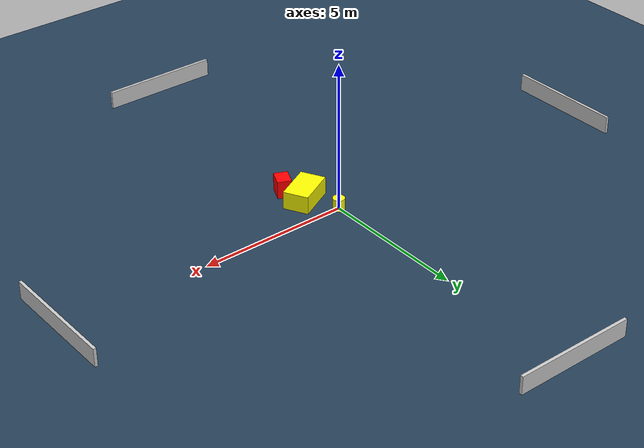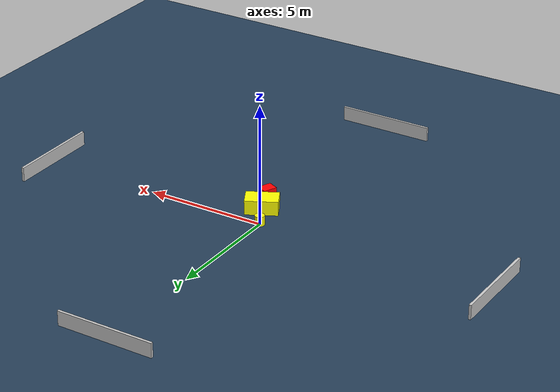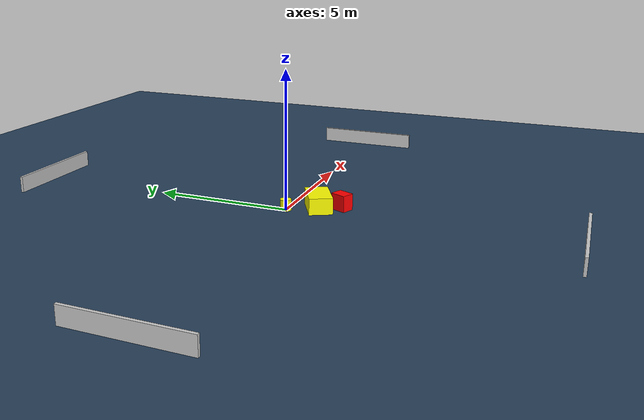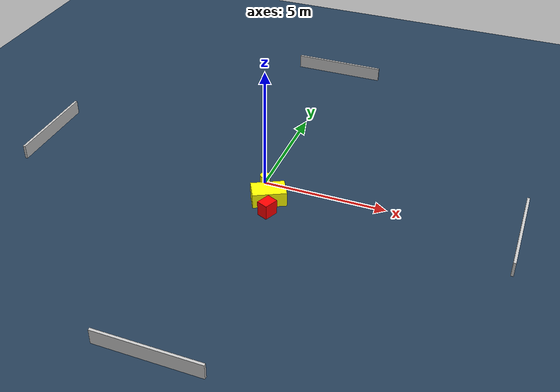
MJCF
<?xml version="1.0" ?>
<mujoco model="generated_environment">
  <option timestep="0.01" integrator="RK4" cone="elliptic"/>
  <default>
    <geom density="1"/>
  </default>
  <asset>
    <texture builtin="gradient" height="3072" name="skybox" rgb1="0.3 0.5 0.7" rgb2="0 0 0" type="skybox" width="512"/>
    <texture builtin="checker" height="300" name="groundplane" rgb1="0.2 0.3 0.4" rgb2="0.1 0.2 0.3" type="2d" width="300"/>
    <material name="groundplane" reflectance="0.2" texrepeat="5 5" texture="groundplane"/>
  </asset>
  <worldbody>
    <light dir="0 0 -1" directional="true" pos="0 0 1.5"/>
    <geom condim="3" friction="0.5 0.005 0.001" material="groundplane" name="floor" pos="0 0 0" size="0 0 0.05" type="plane"/>
    <body name="walls">
      <geom name="wall_1" condim="4" pos="-10.0 0.0 0.3" rgba="0.800000011920929 0.800000011920929 0.800000011920929 1.0" size="0.05 2.0 0.3" type="box"/>
      <geom name="wall_2" condim="4" pos="10.0 0.0 0.3" rgba="0.800000011920929 0.800000011920929 0.800000011920929 1.0" size="0.05 2.0 0.3" type="box"/>
      <geom name="wall_3" condim="4" pos="0.0 -10.0 0.3" rgba="0.800000011920929 0.800000011920929 0.800000011920929 1.0" size="2.0 0.05 0.3" type="box"/>
      <geom name="wall_4" condim="4" pos="0.0 10.0 0.3" rgba="0.800000011920929 0.800000011920929 0.800000011920929 1.0" size="2.0 0.05 0.3" type="box"/>
    </body>
    <body name="robot">
      <joint name="joint_x" type="slide" pos="0 0 0" axis="1 0 0"/>
      <joint name="joint_y" type="slide" pos="0 0 0" axis="0 1 0"/>
      <geom name="robot" type="cylinder" pos="0.0 0.0 0.2" size="0.2 0.2 0.0" mass="5.0" friction="1.0 0.005 0.0001" condim="4" rgba="1.0 1.0 0.0 1.0"/>
    </body>
    <body name="obstacle_1_movable">
      <geom name="obstacle_1_movable" condim="4" pos="0.546191107049259 -1.0296637578349601 0.3" euler="0 0 117.6121221729721" friction="0.0 0.005 0.001" rgba="1.0 1.0 0.0 1.0" size="0.4218842346656654 0.6702329671018212 0.3" type="box" mass="0.1"/>
      <joint type="free"/>
    </body>
    <body name="obstacle_2_static">
      <geom name="obstacle_2_static" condim="4" pos="0.7998061381654739 -1.823883883817647 0.3" euler="0 0 156.07801898874118" friction="0.0 0.005 0.001" rgba="1.0 0.0 0.0 1.0" size="0.23259070541255372 0.2922382701413901 0.3" type="box"/>
    </body>
  </worldbody>
  <actuator>
    <motor name="actuator_x" joint="joint_x" gear="1" ctrlrange="-1 1"/>
    <motor name="actuator_y" joint="joint_y" gear="1" ctrlrange="-1 1"/>
  </actuator>
</mujoco>
